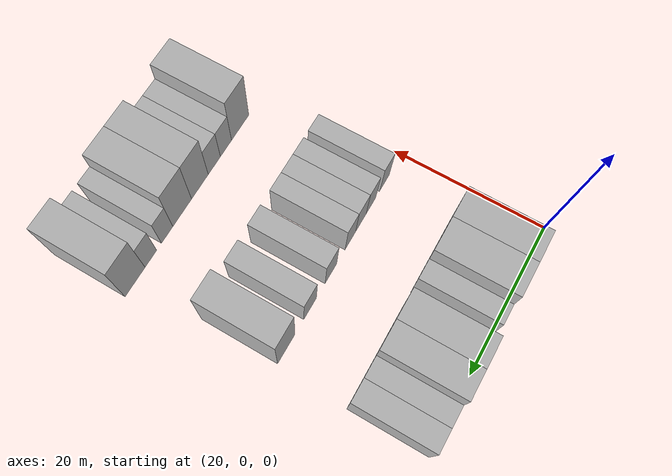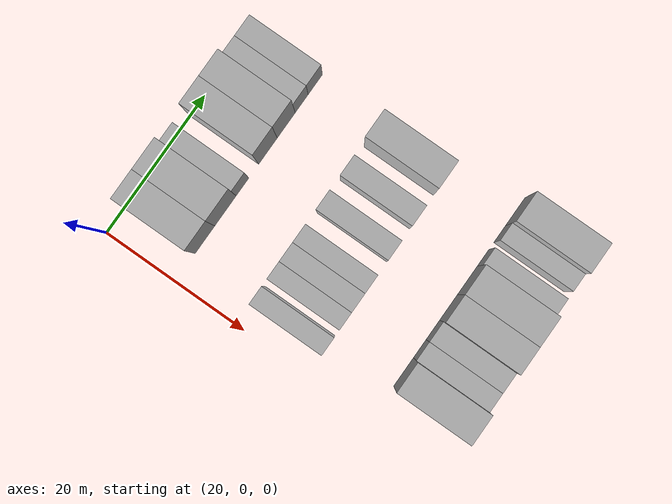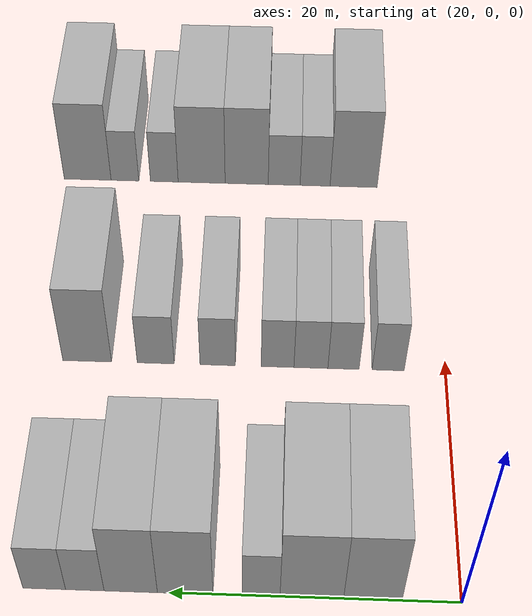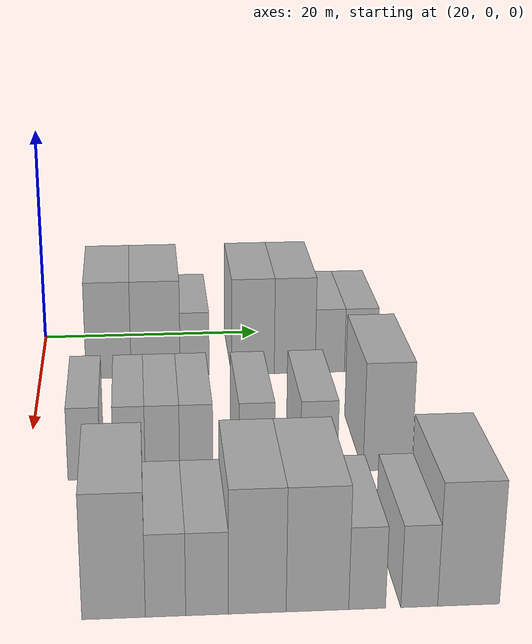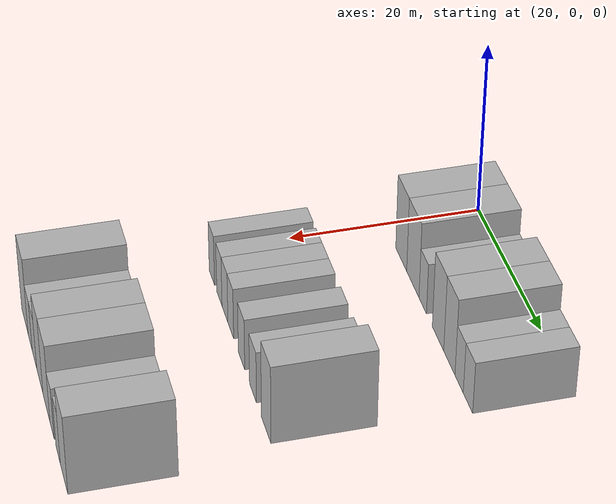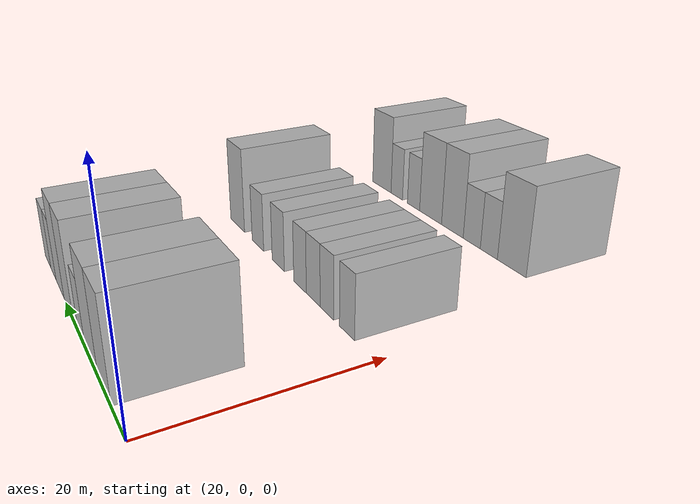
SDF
<sdf version="1.6">
 <world name="default">
  <model name="building_58">
   <static>1</static>
   <pose>25.0000 6.0572 0 0.000000 0.000000 0.000000</pose>
   <link name="link">
    <pose>0 0 4.50 0 0 0</pose>
    <collision name="collision"><geometry><box><size>10.0000 3.9834 9.0000</size></box></geometry></collision>
    <visual name="visual">
     <cast_shadows>0</cast_shadows>
     <geometry><box><size>10.0000 3.9834 9.0000</size></box></geometry>
     <material>
      <script>
       <uri>model://HANNAS_wall/materials/scripts</uri>
       <uri>model://HANNAS_wall/materials/textures</uri>
       <name>vrc/HANNAS_wall</name>
      </script>
     </material>
    </visual>
   </link>
  </model>
  <model name="building_59">
   <static>1</static>
   <pose>25.0000 10.2178 0 0.000000 0.000000 0.000000</pose>
   <link name="link">
    <pose>0 0 4.50 0 0 0</pose>
    <collision name="collision"><geometry><box><size>10.0000 4.3378 9.0000</size></box></geometry></collision>
    <visual name="visual">
     <cast_shadows>0</cast_shadows>
     <geometry><box><size>10.0000 4.3378 9.0000</size></box></geometry>
     <material>
      <script>
       <uri>model://HANNAS_wall/materials/scripts</uri>
       <uri>model://HANNAS_wall/materials/textures</uri>
       <name>vrc/HANNAS_wall</name>
      </script>
     </material>
    </visual>
   </link>
  </model>
  <model name="building_60">
   <static>1</static>
   <pose>25.0000 13.6770 0 0.000000 0.000000 0.000000</pose>
   <link name="link">
    <pose>0 0 3.00 0 0 0</pose>
    <collision name="collision"><geometry><box><size>10.0000 2.5806 6.0000</size></box></geometry></collision>
    <visual name="visual">
     <cast_shadows>0</cast_shadows>
     <geometry><box><size>10.0000 2.5806 6.0000</size></box></geometry>
     <material>
      <script>
       <uri>model://HANNAS_wall/materials/scripts</uri>
       <uri>model://HANNAS_wall/materials/textures</uri>
       <name>vrc/HANNAS_wall</name>
      </script>
     </material>
    </visual>
   </link>
  </model>
  <model name="building_61">
   <static>1</static>
   <pose>25.0000 18.8721 0 0.000000 0.000000 0.000000</pose>
   <link name="link">
    <pose>0 0 4.50 0 0 0</pose>
    <collision name="collision"><geometry><box><size>10.0000 3.8097 9.0000</size></box></geometry></collision>
    <visual name="visual">
     <cast_shadows>0</cast_shadows>
     <geometry><box><size>10.0000 3.8097 9.0000</size></box></geometry>
     <material>
      <script>
       <uri>model://HANNAS_wall/materials/scripts</uri>
       <uri>model://HANNAS_wall/materials/textures</uri>
       <name>vrc/HANNAS_wall</name>
      </script>
     </material>
    </visual>
   </link>
  </model>
  <model name="building_62">
   <static>1</static>
   <pose>25.0000 22.6075 0 0.000000 0.000000 0.000000</pose>
   <link name="link">
    <pose>0 0 4.50 0 0 0</pose>
    <collision name="collision"><geometry><box><size>10.0000 3.6612 9.0000</size></box></geometry></collision>
    <visual name="visual">
     <cast_shadows>0</cast_shadows>
     <geometry><box><size>10.0000 3.6612 9.0000</size></box></geometry>
     <material>
      <script>
       <uri>model://HANNAS_wall/materials/scripts</uri>
       <uri>model://HANNAS_wall/materials/textures</uri>
       <name>vrc/HANNAS_wall</name>
      </script>
     </material>
    </visual>
   </link>
  </model>
  <model name="building_63">
   <static>1</static>
   <pose>25.0000 25.7609 0 0.000000 0.000000 0.000000</pose>
   <link name="link">
    <pose>0 0 3.00 0 0 0</pose>
    <collision name="collision"><geometry><box><size>10.0000 2.6454 6.0000</size></box></geometry></collision>
    <visual name="visual">
     <cast_shadows>0</cast_shadows>
     <geometry><box><size>10.0000 2.6454 6.0000</size></box></geometry>
     <material>
      <script>
       <uri>model://HANNAS_wall/materials/scripts</uri>
       <uri>model://HANNAS_wall/materials/textures</uri>
       <name>vrc/HANNAS_wall</name>
      </script>
     </material>
    </visual>
   </link>
  </model>
  <model name="building_64">
   <static>1</static>
   <pose>25.0000 28.5538 0 0.000000 0.000000 0.000000</pose>
   <link name="link">
    <pose>0 0 3.00 0 0 0</pose>
    <collision name="collision"><geometry><box><size>10.0000 2.9404 6.0000</size></box></geometry></collision>
    <visual name="visual">
     <cast_shadows>0</cast_shadows>
     <geometry><box><size>10.0000 2.9404 6.0000</size></box></geometry>
     <material>
      <script>
       <uri>model://HANNAS_wall/materials/scripts</uri>
       <uri>model://HANNAS_wall/materials/textures</uri>
       <name>vrc/HANNAS_wall</name>
      </script>
     </material>
    </visual>
   </link>
  </model>
  <model name="building_175">
   <static>1</static>
   <pose>44.0000 4.4271 0 0.000000 0.000000 0.000000</pose>
   <link name="link">
    <pose>0 0 3.00 0 0 0</pose>
    <collision name="collision"><geometry><box><size>10.0000 2.4710 6.0000</size></box></geometry></collision>
    <visual name="visual">
     <cast_shadows>0</cast_shadows>
     <geometry><box><size>10.0000 2.4710 6.0000</size></box></geometry>
     <material>
      <script>
       <uri>model://HANNAS_wall/materials/scripts</uri>
       <uri>model://HANNAS_wall/materials/textures</uri>
       <name>vrc/HANNAS_wall</name>
      </script>
     </material>
    </visual>
   </link>
  </model>
  <model name="building_176">
   <static>1</static>
   <pose>44.0000 7.8661 0 0.000000 0.000000 0.000000</pose>
   <link name="link">
    <pose>0 0 3.00 0 0 0</pose>
    <collision name="collision"><geometry><box><size>10.0000 2.4071 6.0000</size></box></geometry></collision>
    <visual name="visual">
     <cast_shadows>0</cast_shadows>
     <geometry><box><size>10.0000 2.4071 6.0000</size></box></geometry>
     <material>
      <script>
       <uri>model://HANNAS_wall/materials/scripts</uri>
       <uri>model://HANNAS_wall/materials/textures</uri>
       <name>vrc/HANNAS_wall</name>
      </script>
     </material>
    </visual>
   </link>
  </model>
  <model name="building_177">
   <static>1</static>
   <pose>44.0000 10.3805 0 0.000000 0.000000 0.000000</pose>
   <link name="link">
    <pose>0 0 3.00 0 0 0</pose>
    <collision name="collision"><geometry><box><size>10.0000 2.6217 6.0000</size></box></geometry></collision>
    <visual name="visual">
     <cast_shadows>0</cast_shadows>
     <geometry><box><size>10.0000 2.6217 6.0000</size></box></geometry>
     <material>
      <script>
       <uri>model://HANNAS_wall/materials/scripts</uri>
       <uri>model://HANNAS_wall/materials/textures</uri>
       <name>vrc/HANNAS_wall</name>
      </script>
     </material>
    </visual>
   </link>
  </model>
  <model name="building_178">
   <static>1</static>
   <pose>44.0000 12.9569 0 0.000000 0.000000 0.000000</pose>
   <link name="link">
    <pose>0 0 3.00 0 0 0</pose>
    <collision name="collision"><geometry><box><size>10.0000 2.5312 6.0000</size></box></geometry></collision>
    <visual name="visual">
     <cast_shadows>0</cast_shadows>
     <geometry><box><size>10.0000 2.5312 6.0000</size></box></geometry>
     <material>
      <script>
       <uri>model://HANNAS_wall/materials/scripts</uri>
       <uri>model://HANNAS_wall/materials/textures</uri>
       <name>vrc/HANNAS_wall</name>
      </script>
     </material>
    </visual>
   </link>
  </model>
  <model name="building_179">
   <static>1</static>
   <pose>44.0000 17.5885 0 0.000000 0.000000 0.000000</pose>
   <link name="link">
    <pose>0 0 3.00 0 0 0</pose>
    <collision name="collision"><geometry><box><size>10.0000 2.7321 6.0000</size></box></geometry></collision>
    <visual name="visual">
     <cast_shadows>0</cast_shadows>
     <geometry><box><size>10.0000 2.7321 6.0000</size></box></geometry>
     <material>
      <script>
       <uri>model://HANNAS_wall/materials/scripts</uri>
       <uri>model://HANNAS_wall/materials/textures</uri>
       <name>vrc/HANNAS_wall</name>
      </script>
     </material>
    </visual>
   </link>
  </model>
  <model name="building_180">
   <static>1</static>
   <pose>44.0000 22.3871 0 0.000000 0.000000 0.000000</pose>
   <link name="link">
    <pose>0 0 3.00 0 0 0</pose>
    <collision name="collision"><geometry><box><size>10.0000 2.8651 6.0000</size></box></geometry></collision>
    <visual name="visual">
     <cast_shadows>0</cast_shadows>
     <geometry><box><size>10.0000 2.8651 6.0000</size></box></geometry>
     <material>
      <script>
       <uri>model://HANNAS_wall/materials/scripts</uri>
       <uri>model://HANNAS_wall/materials/textures</uri>
       <name>vrc/HANNAS_wall</name>
      </script>
     </material>
    </visual>
   </link>
  </model>
  <model name="building_181">
   <static>1</static>
   <pose>44.0000 27.7113 0 0.000000 0.000000 0.000000</pose>
   <link name="link">
    <pose>0 0 4.50 0 0 0</pose>
    <collision name="collision"><geometry><box><size>10.0000 3.7833 9.0000</size></box></geometry></collision>
    <visual name="visual">
     <cast_shadows>0</cast_shadows>
     <geometry><box><size>10.0000 3.7833 9.0000</size></box></geometry>
     <material>
      <script>
       <uri>model://HANNAS_wall/materials/scripts</uri>
       <uri>model://HANNAS_wall/materials/textures</uri>
       <name>vrc/HANNAS_wall</name>
      </script>
     </material>
    </visual>
   </link>
  </model>
  <model name="building_292">
   <static>1</static>
   <pose>63.0000 6.8099 0 0.000000 0.000000 0.000000</pose>
   <link name="link">
    <pose>0 0 4.50 0 0 0</pose>
    <collision name="collision"><geometry><box><size>10.0000 4.0505 9.0000</size></box></geometry></collision>
    <visual name="visual">
     <cast_shadows>0</cast_shadows>
     <geometry><box><size>10.0000 4.0505 9.0000</size></box></geometry>
     <material>
      <script>
       <uri>model://HANNAS_wall/materials/scripts</uri>
       <uri>model://HANNAS_wall/materials/textures</uri>
       <name>vrc/HANNAS_wall</name>
      </script>
     </material>
    </visual>
   </link>
  </model>
  <model name="building_293">
   <static>1</static>
   <pose>63.0000 10.1270 0 0.000000 0.000000 0.000000</pose>
   <link name="link">
    <pose>0 0 3.00 0 0 0</pose>
    <collision name="collision"><geometry><box><size>10.0000 2.5836 6.0000</size></box></geometry></collision>
    <visual name="visual">
     <cast_shadows>0</cast_shadows>
     <geometry><box><size>10.0000 2.5836 6.0000</size></box></geometry>
     <material>
      <script>
       <uri>model://HANNAS_wall/materials/scripts</uri>
       <uri>model://HANNAS_wall/materials/textures</uri>
       <name>vrc/HANNAS_wall</name>
      </script>
     </material>
    </visual>
   </link>
  </model>
  <model name="building_294">
   <static>1</static>
   <pose>63.0000 12.7908 0 0.000000 0.000000 0.000000</pose>
   <link name="link">
    <pose>0 0 3.00 0 0 0</pose>
    <collision name="collision"><geometry><box><size>10.0000 2.7440 6.0000</size></box></geometry></collision>
    <visual name="visual">
     <cast_shadows>0</cast_shadows>
     <geometry><box><size>10.0000 2.7440 6.0000</size></box></geometry>
     <material>
      <script>
       <uri>model://HANNAS_wall/materials/scripts</uri>
       <uri>model://HANNAS_wall/materials/textures</uri>
       <name>vrc/HANNAS_wall</name>
      </script>
     </material>
    </visual>
   </link>
  </model>
  <model name="building_295">
   <static>1</static>
   <pose>63.0000 16.0214 0 0.000000 0.000000 0.000000</pose>
   <link name="link">
    <pose>0 0 4.50 0 0 0</pose>
    <collision name="collision"><geometry><box><size>10.0000 3.7172 9.0000</size></box></geometry></collision>
    <visual name="visual">
     <cast_shadows>0</cast_shadows>
     <geometry><box><size>10.0000 3.7172 9.0000</size></box></geometry>
     <material>
      <script>
       <uri>model://HANNAS_wall/materials/scripts</uri>
       <uri>model://HANNAS_wall/materials/textures</uri>
       <name>vrc/HANNAS_wall</name>
      </script>
     </material>
    </visual>
   </link>
  </model>
  <model name="building_296">
   <static>1</static>
   <pose>63.0000 19.9101 0 0.000000 0.000000 0.000000</pose>
   <link name="link">
    <pose>0 0 4.50 0 0 0</pose>
    <collision name="collision"><geometry><box><size>10.0000 4.0603 9.0000</size></box></geometry></collision>
    <visual name="visual">
     <cast_shadows>0</cast_shadows>
     <geometry><box><size>10.0000 4.0603 9.0000</size></box></geometry>
     <material>
      <script>
       <uri>model://HANNAS_wall/materials/scripts</uri>
       <uri>model://HANNAS_wall/materials/textures</uri>
       <name>vrc/HANNAS_wall</name>
      </script>
     </material>
    </visual>
   </link>
  </model>
  <model name="building_297">
   <static>1</static>
   <pose>63.0000 23.1408 0 0.000000 0.000000 0.000000</pose>
   <link name="link">
    <pose>0 0 3.00 0 0 0</pose>
    <collision name="collision"><geometry><box><size>10.0000 2.4011 6.0000</size></box></geometry></collision>
    <visual name="visual">
     <cast_shadows>0</cast_shadows>
     <geometry><box><size>10.0000 2.4011 6.0000</size></box></geometry>
     <material>
      <script>
       <uri>model://HANNAS_wall/materials/scripts</uri>
       <uri>model://HANNAS_wall/materials/textures</uri>
       <name>vrc/HANNAS_wall</name>
      </script>
     </material>
    </visual>
   </link>
  </model>
  <model name="building_298">
   <static>1</static>
   <pose>63.0000 26.5448 0 0.000000 0.000000 0.000000</pose>
   <link name="link">
    <pose>0 0 3.00 0 0 0</pose>
    <collision name="collision"><geometry><box><size>10.0000 2.4068 6.0000</size></box></geometry></collision>
    <visual name="visual">
     <cast_shadows>0</cast_shadows>
     <geometry><box><size>10.0000 2.4068 6.0000</size></box></geometry>
     <material>
      <script>
       <uri>model://HANNAS_wall/materials/scripts</uri>
       <uri>model://HANNAS_wall/materials/textures</uri>
       <name>vrc/HANNAS_wall</name>
      </script>
     </material>
    </visual>
   </link>
  </model>
  <model name="building_299">
   <static>1</static>
   <pose>63.0000 29.7794 0 0.000000 0.000000 0.000000</pose>
   <link name="link">
    <pose>0 0 4.50 0 0 0</pose>
    <collision name="collision"><geometry><box><size>10.0000 4.0624 9.0000</size></box></geometry></collision>
    <visual name="visual">
     <cast_shadows>0</cast_shadows>
     <geometry><box><size>10.0000 4.0624 9.0000</size></box></geometry>
     <material>
      <script>
       <uri>model://HANNAS_wall/materials/scripts</uri>
       <uri>model://HANNAS_wall/materials/textures</uri>
       <name>vrc/HANNAS_wall</name>
      </script>
     </material>
    </visual>
   </link>
  </model>
 </world>
</sdf>
